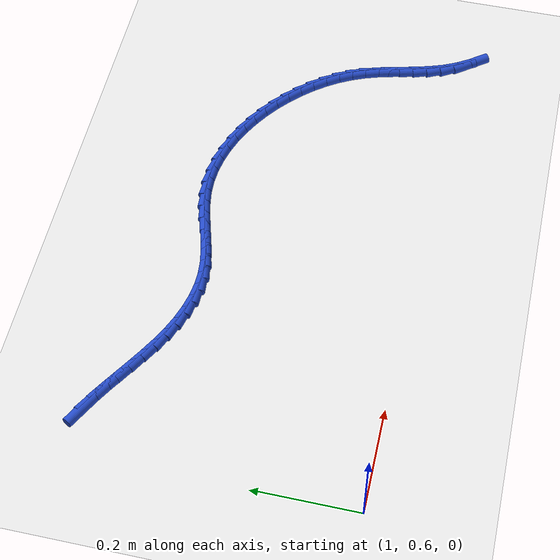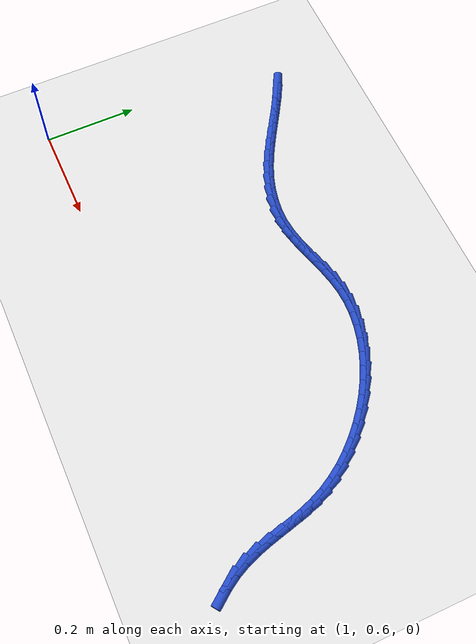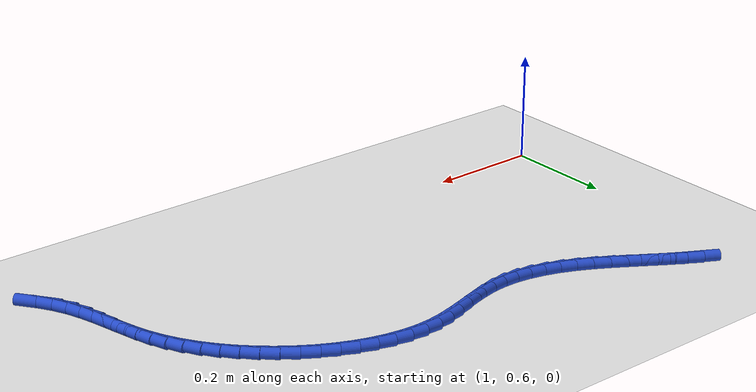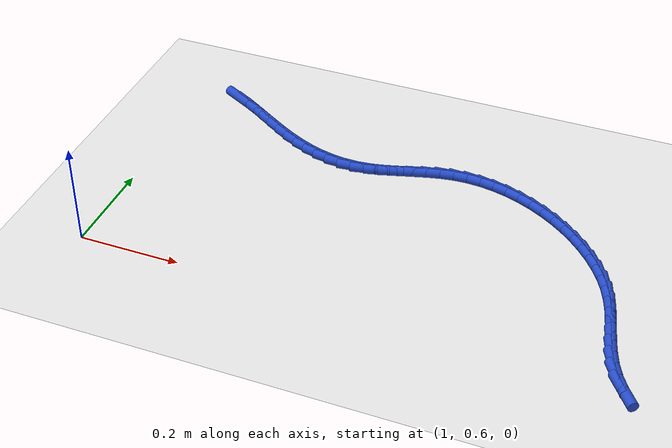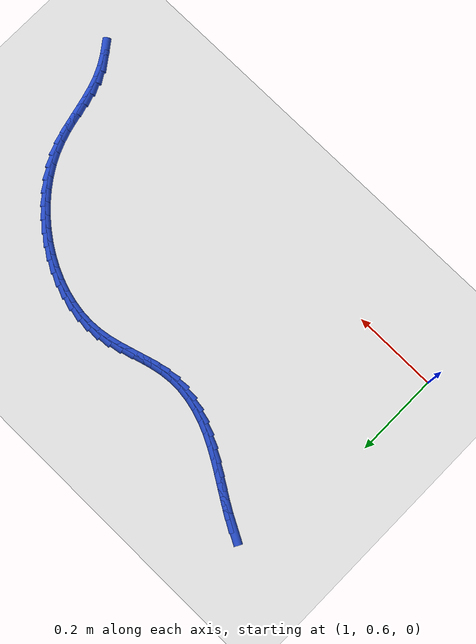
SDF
<sdf version="1.6">
 <world name="default">
  <model name="ground_plane">
   <static>1</static>
   <link name="link">
    <collision name="collision">
     <geometry><plane><normal>0 0 1</normal><size>100 100</size></plane></geometry>
     <surface><friction><ode><mu>100</mu><mu2>50</mu2></ode></friction></surface>
    </collision>
    <visual name="visual">
     <cast_shadows>0</cast_shadows>
     <geometry><plane><normal>0 0 1</normal><size>100 100</size></plane></geometry>
     <material>
      <script><uri>file://media/materials/scripts/gazebo.material</uri><name>Gazebo/WhiteGlow</name></script>
     </material>
    </visual>
   </link>
  </model>
  <model name="line">
   <link name="link_65">
    <pose>1.086043932920902 1.121421572236589 0.01 0 1.57 -0.4942224501571923</pose>
    <collision name="collision">
     <geometry><cylinder><radius>0.01</radius><length>0.08</length></cylinder></geometry>
    </collision>
    <visual name="visual">
     <material>
      <script><name>Gazebo/Blue</name><uri>file://media/materials/scripts/gazebo.material</uri></script>
     </material>
     <geometry><cylinder><radius>0.01</radius><length>0.08</length></cylinder></geometry>
    </visual>
   </link>
   <link name="link_66">
    <pose>1.1112264376425058 1.1078526299931568 0.01 0 1.57 -0.5365528724173769</pose>
    <collision name="collision">
     <geometry><cylinder><radius>0.01</radius><length>0.08</length></cylinder></geometry>
    </collision>
    <visual name="visual">
     <material>
      <script><name>Gazebo/Blue</name><uri>file://media/materials/scripts/gazebo.material</uri></script>
     </material>
     <geometry><cylinder><radius>0.01</radius><length>0.08</length></cylinder></geometry>
    </visual>
   </link>
   <link name="link_67">
    <pose>1.1365469672662563 1.0927931555759887 0.01 0 1.57 -0.5590714431619331</pose>
    <collision name="collision">
     <geometry><cylinder><radius>0.01</radius><length>0.08</length></cylinder></geometry>
    </collision>
    <visual name="visual">
     <material>
      <script><name>Gazebo/Blue</name><uri>file://media/materials/scripts/gazebo.material</uri></script>
     </material>
     <geometry><cylinder><radius>0.01</radius><length>0.08</length></cylinder></geometry>
    </visual>
   </link>
   <link name="link_68">
    <pose>1.1620416325729557 1.0768422462248255 0.01 0 1.57 -0.5635544433851493</pose>
    <collision name="collision">
     <geometry><cylinder><radius>0.01</radius><length>0.08</length></cylinder></geometry>
    </collision>
    <visual name="visual">
     <material>
      <script><name>Gazebo/Blue</name><uri>file://media/materials/scripts/gazebo.material</uri></script>
     </material>
     <geometry><cylinder><radius>0.01</radius><length>0.08</length></cylinder></geometry>
    </visual>
   </link>
   <link name="link_69">
    <pose>1.187746544343408 1.0605989991794076 0.01 0 1.57 -0.5507174615632591</pose>
    <collision name="collision">
     <geometry><cylinder><radius>0.01</radius><length>0.08</length></cylinder></geometry>
    </collision>
    <visual name="visual">
     <material>
      <script><name>Gazebo/Blue</name><uri>file://media/materials/scripts/gazebo.material</uri></script>
     </material>
     <geometry><cylinder><radius>0.01</radius><length>0.08</length></cylinder></geometry>
    </visual>
   </link>
   <link name="link_70">
    <pose>1.2136978133584164 1.0446625116794752 0.01 0 1.57 -0.5202926035390121</pose>
    <collision name="collision">
     <geometry><cylinder><radius>0.01</radius><length>0.08</length></cylinder></geometry>
    </collision>
    <visual name="visual">
     <material>
      <script><name>Gazebo/Blue</name><uri>file://media/materials/scripts/gazebo.material</uri></script>
     </material>
     <geometry><cylinder><radius>0.01</radius><length>0.08</length></cylinder></geometry>
    </visual>
   </link>
   <link name="link_71">
    <pose>1.2399315503987833 1.0296318809647693 0.01 0 1.57 -0.47113711661729996</pose>
    <collision name="collision">
     <geometry><cylinder><radius>0.01</radius><length>0.08</length></cylinder></geometry>
    </collision>
    <visual name="visual">
     <material>
      <script><name>Gazebo/Blue</name><uri>file://media/materials/scripts/gazebo.material</uri></script>
     </material>
     <geometry><cylinder><radius>0.01</radius><length>0.08</length></cylinder></geometry>
    </visual>
   </link>
   <link name="link_72">
    <pose>1.2664838662453124 1.0161062042750304 0.01 0 1.57 -0.4027305709951662</pose>
    <collision name="collision">
     <geometry><cylinder><radius>0.01</radius><length>0.08</length></cylinder></geometry>
    </collision>
    <visual name="visual">
     <material>
      <script><name>Gazebo/Blue</name><uri>file://media/materials/scripts/gazebo.material</uri></script>
     </material>
     <geometry><cylinder><radius>0.01</radius><length>0.08</length></cylinder></geometry>
    </visual>
   </link>
   <link name="link_73">
    <pose>1.2933767721583673 1.0046494063245723 0.01 0 1.57 -0.32218533567373275</pose>
    <collision name="collision">
     <geometry><cylinder><radius>0.01</radius><length>0.08</length></cylinder></geometry>
    </collision>
    <visual name="visual">
     <material>
      <script><name>Gazebo/Blue</name><uri>file://media/materials/scripts/gazebo.material</uri></script>
     </material>
     <geometry><cylinder><radius>0.01</radius><length>0.08</length></cylinder></geometry>
    </visual>
   </link>
   <link name="link_74">
    <pose>1.3205352836709827 0.9955834472374644 0.01 0 1.57 -0.23211272492293178</pose>
    <collision name="collision">
     <geometry><cylinder><radius>0.01</radius><length>0.08</length></cylinder></geometry>
    </collision>
    <visual name="visual">
     <material>
      <script><name>Gazebo/Blue</name><uri>file://media/materials/scripts/gazebo.material</uri></script>
     </material>
     <geometry><cylinder><radius>0.01</radius><length>0.08</length></cylinder></geometry>
    </visual>
   </link>
   <link name="link_75">
    <pose>1.347843611310174 0.9891284953698999 0.01 0 1.57 -0.13177891272450698</pose>
    <collision name="collision">
     <geometry><cylinder><radius>0.01</radius><length>0.08</length></cylinder></geometry>
    </collision>
    <visual name="visual">
     <material>
      <script><name>Gazebo/Blue</name><uri>file://media/materials/scripts/gazebo.material</uri></script>
     </material>
     <geometry><cylinder><radius>0.01</radius><length>0.08</length></cylinder></geometry>
    </visual>
   </link>
   <link name="link_76">
    <pose>1.3751858238670163 0.9855043655049885 0.01 0 1.57 -0.021034666077424772</pose>
    <collision name="collision">
     <geometry><cylinder><radius>0.01</radius><length>0.08</length></cylinder></geometry>
    </collision>
    <visual name="visual">
     <material>
      <script><name>Gazebo/Blue</name><uri>file://media/materials/scripts/gazebo.material</uri></script>
     </material>
     <geometry><cylinder><radius>0.01</radius><length>0.08</length></cylinder></geometry>
    </visual>
   </link>
   <link name="link_77">
    <pose>1.402445990132587 0.9849308724258392 0.01 0 1.57 0.09747089174126566</pose>
    <collision name="collision">
     <geometry><cylinder><radius>0.01</radius><length>0.08</length></cylinder></geometry>
    </collision>
    <visual name="visual">
     <material>
      <script><name>Gazebo/Blue</name><uri>file://media/materials/scripts/gazebo.material</uri></script>
     </material>
     <geometry><cylinder><radius>0.01</radius><length>0.08</length></cylinder></geometry>
    </visual>
   </link>
   <link name="link_78">
    <pose>1.42951725263551 0.9875779206633518 0.01 0 1.57 0.1971548235660818</pose>
    <collision name="collision">
     <geometry><cylinder><radius>0.01</radius><length>0.08</length></cylinder></geometry>
    </collision>
    <visual name="visual">
     <material>
      <script><name>Gazebo/Blue</name><uri>file://media/materials/scripts/gazebo.material</uri></script>
     </material>
     <geometry><cylinder><radius>0.01</radius><length>0.08</length></cylinder></geometry>
    </visual>
   </link>
   <link name="link_79">
    <pose>1.4564136424800946 0.9929504650219272 0.01 0 1.57 0.25982197745513524</pose>
    <collision name="collision">
     <geometry><cylinder><radius>0.01</radius><length>0.08</length></cylinder></geometry>
    </collision>
    <visual name="visual">
     <material>
      <script><name>Gazebo/Blue</name><uri>file://media/materials/scripts/gazebo.material</uri></script>
     </material>
     <geometry><cylinder><radius>0.01</radius><length>0.08</length></cylinder></geometry>
    </visual>
   </link>
   <link name="link_80">
    <pose>1.4832351827330772 1.0000804600114879 0.01 0 1.57 0.2864849702965535</pose>
    <collision name="collision">
     <geometry><cylinder><radius>0.01</radius><length>0.08</length></cylinder></geometry>
    </collision>
    <visual name="visual">
     <material>
      <script><name>Gazebo/Blue</name><uri>file://media/materials/scripts/gazebo.material</uri></script>
     </material>
     <geometry><cylinder><radius>0.01</radius><length>0.08</length></cylinder></geometry>
    </visual>
   </link>
   <link name="link_81">
    <pose>1.5100837360492592 1.0079897414556096 0.01 0 1.57 0.27838762405035156</pose>
    <collision name="collision">
     <geometry><cylinder><radius>0.01</radius><length>0.08</length></cylinder></geometry>
    </collision>
    <visual name="visual">
     <material>
      <script><name>Gazebo/Blue</name><uri>file://media/materials/scripts/gazebo.material</uri></script>
     </material>
     <geometry><cylinder><radius>0.01</radius><length>0.08</length></cylinder></geometry>
    </visual>
   </link>
   <link name="link_82">
    <pose>1.537061165083442 1.015700145177866 0.01 0 1.57 0.23566319123228607</pose>
    <collision name="collision">
     <geometry><cylinder><radius>0.01</radius><length>0.08</length></cylinder></geometry>
    </collision>
    <visual name="visual">
     <material>
      <script><name>Gazebo/Blue</name><uri>file://media/materials/scripts/gazebo.material</uri></script>
     </material>
     <geometry><cylinder><radius>0.01</radius><length>0.08</length></cylinder></geometry>
    </visual>
   </link>
   <link name="link_83">
    <pose>1.5642693324904269 1.0222335070018325 0.01 0 1.57 0.15765080355639802</pose>
    <collision name="collision">
     <geometry><cylinder><radius>0.01</radius><length>0.08</length></cylinder></geometry>
    </collision>
    <visual name="visual">
     <material>
      <script><name>Gazebo/Blue</name><uri>file://media/materials/scripts/gazebo.material</uri></script>
     </material>
     <geometry><cylinder><radius>0.01</radius><length>0.08</length></cylinder></geometry>
    </visual>
   </link>
   <link name="link_84">
    <pose>1.5918101009250145 1.026611662751083 0.01 0 1.57 0.050052059470819775</pose>
    <collision name="collision">
     <geometry><cylinder><radius>0.01</radius><length>0.08</length></cylinder></geometry>
    </collision>
    <visual name="visual">
     <material>
      <script><name>Gazebo/Blue</name><uri>file://media/materials/scripts/gazebo.material</uri></script>
     </material>
     <geometry><cylinder><radius>0.01</radius><length>0.08</length></cylinder></geometry>
    </visual>
   </link>
   <link name="link_85">
    <pose>1.6197450706678078 1.0280110342857405 0.01 0 1.57 -0.05814804762128849</pose>
    <collision name="collision">
     <geometry><cylinder><radius>0.01</radius><length>0.08</length></cylinder></geometry>
    </collision>
    <visual name="visual">
     <material>
      <script><name>Gazebo/Blue</name><uri>file://media/materials/scripts/gazebo.material</uri></script>
     </material>
     <geometry><cylinder><radius>0.01</radius><length>0.08</length></cylinder></geometry>
    </visual>
   </link>
   <link name="link_86">
    <pose>1.6479374263480122 1.02636985371058 0.01 0 1.57 -0.15827299407377377</pose>
    <collision name="collision">
     <geometry><cylinder><radius>0.01</radius><length>0.08</length></cylinder></geometry>
    </collision>
    <visual name="visual">
     <material>
      <script><name>Gazebo/Blue</name><uri>file://media/materials/scripts/gazebo.material</uri></script>
     </material>
     <geometry><cylinder><radius>0.01</radius><length>0.08</length></cylinder></geometry>
    </visual>
   </link>
   <link name="link_87">
    <pose>1.6761893361448488 1.0218606237454344 0.01 0 1.57 -0.2508722938636762</pose>
    <collision name="collision">
     <geometry><cylinder><radius>0.01</radius><length>0.08</length></cylinder></geometry>
    </collision>
    <visual name="visual">
     <material>
      <script><name>Gazebo/Blue</name><uri>file://media/materials/scripts/gazebo.material</uri></script>
     </material>
     <geometry><cylinder><radius>0.01</radius><length>0.08</length></cylinder></geometry>
    </visual>
   </link>
   <link name="link_88">
    <pose>1.704302951571053 1.0146559111005513 0.01 0 1.57 -0.33685162620471876</pose>
    <collision name="collision">
     <geometry><cylinder><radius>0.01</radius><length>0.08</length></cylinder></geometry>
    </collision>
    <visual name="visual">
     <material>
      <script><name>Gazebo/Blue</name><uri>file://media/materials/scripts/gazebo.material</uri></script>
     </material>
     <geometry><cylinder><radius>0.01</radius><length>0.08</length></cylinder></geometry>
    </visual>
   </link>
   <link name="link_89">
    <pose>1.7320804241393608 1.0049282824861778 0.01 0 1.57 -0.41729717133138317</pose>
    <collision name="collision">
     <geometry><cylinder><radius>0.01</radius><length>0.08</length></cylinder></geometry>
    </collision>
    <visual name="visual">
     <material>
      <script><name>Gazebo/Blue</name><uri>file://media/materials/scripts/gazebo.material</uri></script>
     </material>
     <geometry><cylinder><radius>0.01</radius><length>0.08</length></cylinder></geometry>
    </visual>
   </link>
   <link name="link_90">
    <pose>1.7593239053625072 0.9928503046125606 0.01 0 1.57 -0.4933640058254891</pose>
    <collision name="collision">
     <geometry><cylinder><radius>0.01</radius><length>0.08</length></cylinder></geometry>
    </collision>
    <visual name="visual">
     <material>
      <script><name>Gazebo/Blue</name><uri>file://media/materials/scripts/gazebo.material</uri></script>
     </material>
     <geometry><cylinder><radius>0.01</radius><length>0.08</length></cylinder></geometry>
    </visual>
   </link>
   <link name="link_91">
    <pose>1.7858355467532279 0.9785945441899474 0.01 0 1.57 -0.5662157608824502</pose>
    <collision name="collision">
     <geometry><cylinder><radius>0.01</radius><length>0.08</length></cylinder></geometry>
    </collision>
    <visual name="visual">
     <material>
      <script><name>Gazebo/Blue</name><uri>file://media/materials/scripts/gazebo.material</uri></script>
     </material>
     <geometry><cylinder><radius>0.01</radius><length>0.08</length></cylinder></geometry>
    </visual>
   </link>
   <link name="link_92">
    <pose>1.8114174998242594 0.9623335679285859 0.01 0 1.57 -0.6370004987460441</pose>
    <collision name="collision">
     <geometry><cylinder><radius>0.01</radius><length>0.08</length></cylinder></geometry>
    </collision>
    <visual name="visual">
     <material>
      <script><name>Gazebo/Blue</name><uri>file://media/materials/scripts/gazebo.material</uri></script>
     </material>
     <geometry><cylinder><radius>0.01</radius><length>0.08</length></cylinder></geometry>
    </visual>
   </link>
   <link name="link_93">
    <pose>1.8358719160883352 0.9442399425387225 0.01 0 1.57 -0.7068495767034636</pose>
    <collision name="collision">
     <geometry><cylinder><radius>0.01</radius><length>0.08</length></cylinder></geometry>
    </collision>
    <visual name="visual">
     <material>
      <script><name>Gazebo/Blue</name><uri>file://media/materials/scripts/gazebo.material</uri></script>
     </material>
     <geometry><cylinder><radius>0.01</radius><length>0.08</length></cylinder></geometry>
    </visual>
   </link>
   <link name="link_94">
    <pose>1.8590009470581927 0.924486234730605 0.01 0 1.57 -0.7768896400871864</pose>
    <collision name="collision">
     <geometry><cylinder><radius>0.01</radius><length>0.08</length></cylinder></geometry>
    </collision>
    <visual name="visual">
     <material>
      <script><name>Gazebo/Blue</name><uri>file://media/materials/scripts/gazebo.material</uri></script>
     </material>
     <geometry><cylinder><radius>0.01</radius><length>0.08</length></cylinder></geometry>
    </visual>
   </link>
   <link name="link_95">
    <pose>1.880606744246566 0.9032450112144803 0.01 0 1.57 -0.8482606035426986</pose>
    <collision name="collision">
     <geometry><cylinder><radius>0.01</radius><length>0.08</length></cylinder></geometry>
    </collision>
    <visual name="visual">
     <material>
      <script><name>Gazebo/Blue</name><uri>file://media/materials/scripts/gazebo.material</uri></script>
     </material>
     <geometry><cylinder><radius>0.01</radius><length>0.08</length></cylinder></geometry>
    </visual>
   </link>
   <link name="link_96">
    <pose>1.9004914591661917 0.8806888387005962 0.01 0 1.57 -0.9221337591094008</pose>
    <collision name="collision">
     <geometry><cylinder><radius>0.01</radius><length>0.08</length></cylinder></geometry>
    </collision>
    <visual name="visual">
     <material>
      <script><name>Gazebo/Blue</name><uri>file://media/materials/scripts/gazebo.material</uri></script>
     </material>
     <geometry><cylinder><radius>0.01</radius><length>0.08</length></cylinder></geometry>
    </visual>
   </link>
   <link name="link_97">
    <pose>1.918457243329805 0.8569902838991995 0.01 0 1.57 -0.9997237342342028</pose>
    <collision name="collision">
     <geometry><cylinder><radius>0.01</radius><length>0.08</length></cylinder></geometry>
    </collision>
    <visual name="visual">
     <material>
      <script><name>Gazebo/Blue</name><uri>file://media/materials/scripts/gazebo.material</uri></script>
     </material>
     <geometry><cylinder><radius>0.01</radius><length>0.08</length></cylinder></geometry>
    </visual>
   </link>
   <link name="link_98">
    <pose>1.934306248250141 0.8323219135205376 0.01 0 1.57 -1.0822857770014065</pose>
    <collision name="collision">
     <geometry><cylinder><radius>0.01</radius><length>0.08</length></cylinder></geometry>
    </collision>
    <visual name="visual">
     <material>
      <script><name>Gazebo/Blue</name><uri>file://media/materials/scripts/gazebo.material</uri></script>
     </material>
     <geometry><cylinder><radius>0.01</radius><length>0.08</length></cylinder></geometry>
    </visual>
   </link>
   <link name="link_99">
    <pose>1.9478406254399359 0.8068562942748574 0.01 0 1.57 -1.170811215280692</pose>
    <collision name="collision">
     <geometry><cylinder><radius>0.01</radius><length>0.08</length></cylinder></geometry>
    </collision>
    <visual name="visual">
     <material>
      <script><name>Gazebo/Blue</name><uri>file://media/materials/scripts/gazebo.material</uri></script>
     </material>
     <geometry><cylinder><radius>0.01</radius><length>0.08</length></cylinder></geometry>
    </visual>
   </link>
   <link name="link_100">
    <pose>1.9588709462325842 0.7807660492540565 0.01 0 1.57 -1.2527446344039386</pose>
    <collision name="collision">
     <geometry><cylinder><radius>0.01</radius><length>0.08</length></cylinder></geometry>
    </collision>
    <visual name="visual">
     <material>
      <script><name>Gazebo/Blue</name><uri>file://media/materials/scripts/gazebo.material</uri></script>
     </material>
     <geometry><cylinder><radius>0.01</radius><length>0.08</length></cylinder></geometry>
    </visual>
   </link>
   <link name="link_101">
    <pose>1.967608527910078 0.7542264850653428 0.01 0 1.57 -1.3076033278958545</pose>
    <collision name="collision">
     <geometry><cylinder><radius>0.01</radius><length>0.08</length></cylinder></geometry>
    </collision>
    <visual name="visual">
     <material>
      <script><name>Gazebo/Blue</name><uri>file://media/materials/scripts/gazebo.material</uri></script>
     </material>
     <geometry><cylinder><radius>0.01</radius><length>0.08</length></cylinder></geometry>
    </visual>
   </link>
   <link name="link_102">
    <pose>1.9748322456815057 0.7274167088543788 0.01 0 1.57 -1.3325943241564953</pose>
    <collision name="collision">
     <geometry><cylinder><radius>0.01</radius><length>0.08</length></cylinder></geometry>
    </collision>
    <visual name="visual">
     <material>
      <script><name>Gazebo/Blue</name><uri>file://media/materials/scripts/gazebo.material</uri></script>
     </material>
     <geometry><cylinder><radius>0.01</radius><length>0.08</length></cylinder></geometry>
    </visual>
   </link>
   <link name="link_103">
    <pose>1.9813640288142713 0.7005161160697411 0.01 0 1.57 -1.3272653240111636</pose>
    <collision name="collision">
     <geometry><cylinder><radius>0.01</radius><length>0.08</length></cylinder></geometry>
    </collision>
    <visual name="visual">
     <material>
      <script><name>Gazebo/Blue</name><uri>file://media/materials/scripts/gazebo.material</uri></script>
     </material>
     <geometry><cylinder><radius>0.01</radius><length>0.08</length></cylinder></geometry>
    </visual>
   </link>
   <link name="link_104">
    <pose>1.9880258065757794 0.6737041021600053 0.01 0 1.57 -1.2914628594797133</pose>
    <collision name="collision">
     <geometry><cylinder><radius>0.01</radius><length>0.08</length></cylinder></geometry>
    </collision>
    <visual name="visual">
     <material>
      <script><name>Gazebo/Blue</name><uri>file://media/materials/scripts/gazebo.material</uri></script>
     </material>
     <geometry><cylinder><radius>0.01</radius><length>0.08</length></cylinder></geometry>
    </visual>
   </link>
   <link name="link_105">
    <pose>1.9956395082334357 0.6471600625737479 0.01 0 1.57 -1.2254865823226224</pose>
    <collision name="collision">
     <geometry><cylinder><radius>0.01</radius><length>0.08</length></cylinder></geometry>
    </collision>
    <visual name="visual">
     <material>
      <script><name>Gazebo/Blue</name><uri>file://media/materials/scripts/gazebo.material</uri></script>
     </material>
     <geometry><cylinder><radius>0.01</radius><length>0.08</length></cylinder></geometry>
    </visual>
   </link>
   <link name="link_106">
    <pose>2.005027063054643 0.6210633927595446 0.01 0 1.57 -1.131034112805338</pose>
    <collision name="collision">
     <geometry><cylinder><radius>0.01</radius><length>0.08</length></cylinder></geometry>
    </collision>
    <visual name="visual">
     <material>
      <script><name>Gazebo/Blue</name><uri>file://media/materials/scripts/gazebo.material</uri></script>
     </material>
     <geometry><cylinder><radius>0.01</radius><length>0.08</length></cylinder></geometry>
    </visual>
   </link>
   <link name="link_107">
    <pose>2.017010400306808 0.5955934881659716 0.01 0 1.57 -1.0211529822318184</pose>
    <collision name="collision">
     <geometry><cylinder><radius>0.01</radius><length>0.08</length></cylinder></geometry>
    </collision>
    <visual name="visual">
     <material>
      <script><name>Gazebo/Blue</name><uri>file://media/materials/scripts/gazebo.material</uri></script>
     </material>
     <geometry><cylinder><radius>0.01</radius><length>0.08</length></cylinder></geometry>
    </visual>
   </link>
   <link name="link_108">
    <pose>2.0321473599867583 0.5708847076316225 0.01 0 1.57 -0.9357845724287509</pose>
    <collision name="collision">
     <geometry><cylinder><radius>0.01</radius><length>0.08</length></cylinder></geometry>
    </collision>
    <visual name="visual">
     <material>
      <script><name>Gazebo/Blue</name><uri>file://media/materials/scripts/gazebo.material</uri></script>
     </material>
     <geometry><cylinder><radius>0.01</radius><length>0.08</length></cylinder></geometry>
    </visual>
   </link>
  </model>
 </world>
</sdf>
